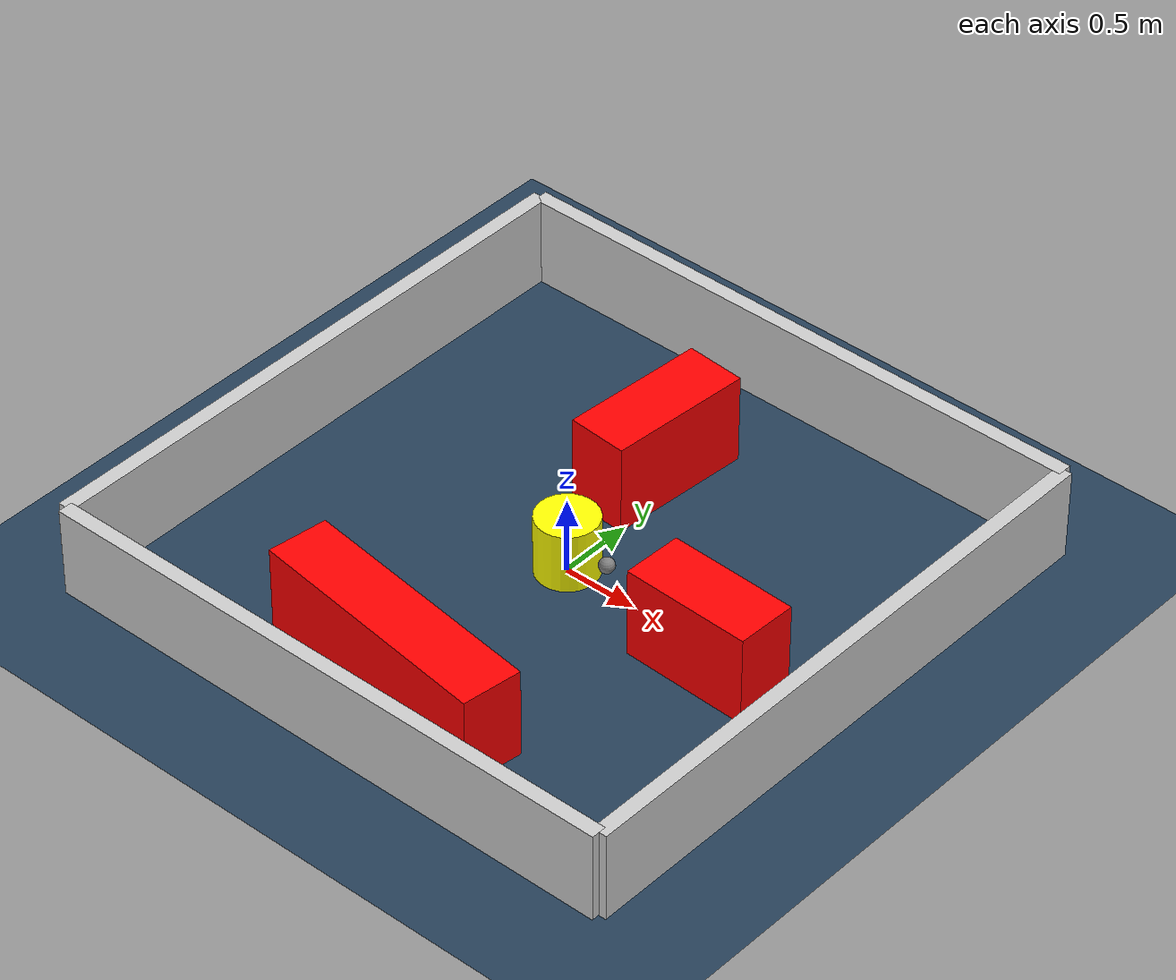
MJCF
<?xml version="1.0" ?>
<mujoco model="generated_environment">
  <option timestep="0.01" integrator="RK4" cone="elliptic"/>
  <default>
    <geom density="1"/>
  </default>
  <asset>
    <texture builtin="gradient" height="3072" rgb1="0.3 0.5 0.7" rgb2="0 0 0" type="skybox" width="512"/>
    <texture builtin="checker" height="300" mark="edge" markrgb="0.8 0.8 0.8" name="groundplane" rgb1="0.2 0.3 0.4" rgb2="0.1 0.2 0.3" type="2d" width="300"/>
    <material name="groundplane" reflectance="0.2" texrepeat="5 5" texture="groundplane" texuniform="true"/>
    <material name="robot" rgba="0.0 1.0 0.0 1"/>
  </asset>
  <worldbody>
    <light dir="0 0 -1" directional="true" pos="0 0 1.5"/>
    <geom condim="4" friction="1.0 0.005 0.001" material="groundplane" name="floor" size="0 0 0.05" type="plane"/>
    <body name="walls">
      <geom name="wall_1" condim="4" pos="-2.0 0.0 0.3" rgba="0.800000011920929 0.800000011920929 0.800000011920929 1.0" size="0.05 2.0 0.3" type="box"/>
      <geom name="wall_2" condim="4" pos="2.0 0.0 0.3" rgba="0.800000011920929 0.800000011920929 0.800000011920929 1.0" size="0.05 2.0 0.3" type="box"/>
      <geom name="wall_3" condim="4" pos="0.0 -2.0 0.3" rgba="0.800000011920929 0.800000011920929 0.800000011920929 1.0" size="2.0 0.05 0.3" type="box"/>
      <geom name="wall_4" condim="4" pos="0.0 2.0 0.3" rgba="0.800000011920929 0.800000011920929 0.800000011920929 1.0" size="2.0 0.05 0.3" type="box"/>
    </body>
    <body name="robot">
      <joint name="joint_x" type="slide" pos="0 0 0" axis="1 0 0"/>
      <joint name="joint_y" type="slide" pos="0 0 0" axis="0 1 0"/>
      <geom name="robot" type="sphere" pos="0.3 0.0 0.2" size="0.05" mass="5." friction="1.0 0.005 0.0001" condim="4" rgba="0.5 0.5 0.5 1.0"/>
      <site name="sensor_ball"/>
    </body>
    <body name="obstacle_movable_1">
      <geom name="obstacle_movable_1" condim="4" pos="0.0 0.0 0.2" euler="0 0 0.0" friction="1.0 0.005 0.001" rgba="1.0 1.0 0.0 1.0" size="0.2 0.2 0.0" type="cylinder" mass="0.1"/>
      <joint type="free"/>
    </body>
    <body name="obstacle_2_static">
      <geom name="obstacle_2_static" condim="4" pos="1.1651881780829454 -0.1358780189100388 0.3" euler="0 0 358.04087425388786" friction="1.0 0.005 0.001" rgba="1 0 0 1" size="0.42972333676536667 0.2 0.3" type="box"/>
    </body>
    <body name="obstacle_3_static">
      <geom name="obstacle_3_static" condim="4" pos="-0.014742884694681768 -1.4219018840103699 0.3" euler="0 0 352.36835011137634" friction="1.0 0.005 0.001" rgba="1 0 0 1" size="0.8461364974182051 0.2 0.3" type="box"/>
    </body>
    <body name="obstacle_4_static">
      <geom name="obstacle_4_static" condim="4" pos="-0.15646198289571944 0.9550199700785857 0.3" euler="0 0 85.72055572831003" friction="1.0 0.005 0.001" rgba="1 0 0 1" size="0.48556730375215085 0.2 0.3" type="box"/>
    </body>
  </worldbody>
  <actuator>
    <motor name="actuator_x" joint="joint_x" gear="1" ctrlrange="-1 1"/>
    <motor name="actuator_y" joint="joint_y" gear="1" ctrlrange="-1 1"/>
  </actuator>
</mujoco>
